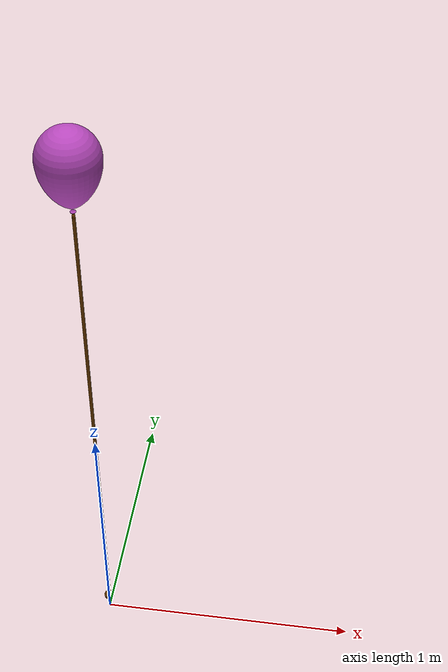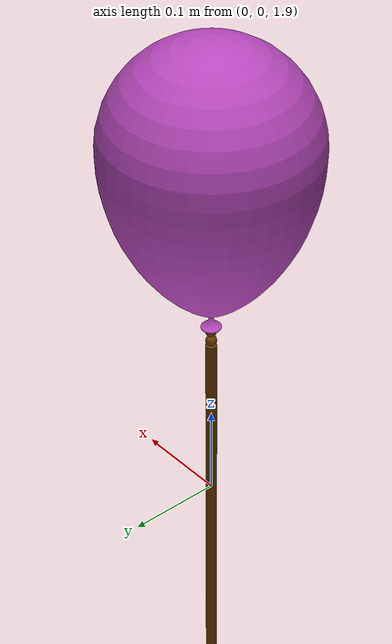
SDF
<?xml version='1.0'?>
<sdf version='1.6'>
  <model name='Balloon_15'>
    <link name='roof'>
      <kinematic>1</kinematic>
      <pose frame=''>0 0 0 0 -0 0</pose>
      <self_collide>0</self_collide>
      <inertial>
        <pose frame=''>0 0 0 0 -0 0</pose>
        <inertia>
          <ixx>1</ixx>
          <ixy>0</ixy>
          <ixz>0</ixz>
          <iyy>1</iyy>
          <iyz>0</iyz>
          <izz>1</izz>
        </inertia>
        <mass>1</mass>
      </inertial>
      <enable_wind>1</enable_wind>
      <gravity>1</gravity>
      <visual name='visual'>
        <transparency>1</transparency>
        <geometry>
          <box>
            <size>2 2 0.1</size>
          </box>
        </geometry>
        <material>
          <ambient>0.2 0.2 0.2 1</ambient>
          <diffuse>0.421 0.225 0 1</diffuse>
          <shader type='pixel'>
            <normal_map>__default__</normal_map>
          </shader>
          <script>
            <name>ModelPreview_1::roof::visual_MATERIAL_</name>
            <uri>__default__</uri>
          </script>
          <specular>0 0 0 1</specular>
          <emissive>0 0 0 1</emissive>
        </material>
        <pose frame=''>0 0 0 0 -0 0</pose>
        <cast_shadows>1</cast_shadows>
      </visual>
      <collision name='collision'>
        <laser_retro>0</laser_retro>
        <max_contacts>10</max_contacts>
        <pose frame=''>0 0 0 0 -0 0</pose>
        <geometry>
          <box>
            <size>1 1 0.1</size>
          </box>
        </geometry>
        <surface>
          <friction>
            <ode>
              <mu>0.1</mu>
              <mu2>0</mu2>
              <fdir1>0 0 0</fdir1>
              <slip1>0.01</slip1>
              <slip2>0.01</slip2>
            </ode>
            <torsional>
              <coefficient>1</coefficient>
              <patch_radius>0</patch_radius>
              <surface_radius>0</surface_radius>
              <use_patch_radius>0</use_patch_radius>
              <ode>
                <slip>0</slip>
              </ode>
            </torsional>
          </friction>
          <bounce>
            <restitution_coefficient>0.01</restitution_coefficient>
            <threshold>1e+06</threshold>
          </bounce>
          <contact>
            <collide_without_contact>0</collide_without_contact>
            <collide_without_contact_bitmask>1</collide_without_contact_bitmask>
            <collide_bitmask>1</collide_bitmask>
            <ode>
              <soft_cfm>0.01</soft_cfm>
              <soft_erp>0.2</soft_erp>
              <kp>1e+13</kp>
              <kd>1</kd>
              <max_vel>0.01</max_vel>
              <min_depth>0</min_depth>
            </ode>
            <bullet>
              <split_impulse>1</split_impulse>
              <split_impulse_penetration_threshold>-0.01</split_impulse_penetration_threshold>
              <soft_cfm>0.01</soft_cfm>
              <soft_erp>0.2</soft_erp>
              <kp>1e+13</kp>
              <kd>1</kd>
            </bullet>
          </contact>
        </surface>
      </collision>
    </link>
    <link name='balloon'>
      <pose frame=''>0 0 2.302 0 -0 0</pose>
      <self_collide>1</self_collide>
      <inertial>
        <pose frame=''>0 0 0 0 -0 0</pose>
        <inertia>
          <ixx>0.000156</ixx>
          <ixy>0</ixy>
          <ixz>0</ixz>
          <iyy>0.000156</iyy>
          <iyz>0</iyz>
          <izz>9.6e-05</izz>
        </inertia>
        <mass>0.01</mass>
      </inertial>
      <enable_wind>1</enable_wind>
      <kinematic>0</kinematic>
      <gravity>0</gravity>
      <visual name='visual'>
        <geometry>
          <mesh>
            <uri>/usr/share/gazebo-9/models/only_balloon.dae</uri>
            <scale>0.0006 0.0006 0.0006</scale>
          </mesh>
        </geometry>
        <material>
          <ambient>0.72 0.28 0.73 1</ambient>
          <diffuse>0.72 0.28 0.74 1</diffuse>
          <specular>1 1 1 1</specular>
          <shader type='pixel'>
            <normal_map>__default__</normal_map>
          </shader>
          <script>
            <name>ModelPreview_3::balloon::visual_MATERIAL_ModelPreview_1::balloon::visual_MATERIAL_</name>
            <uri>__default__</uri>
          </script>
          <specular>0 0 0 1</specular>
          <emissive>0 0 0 1</emissive>
        </material>
        <pose frame=''>0 0 -0.19 0 -0 0</pose>
        <transparency>0</transparency>
        <cast_shadows>1</cast_shadows>
      </visual>
      <collision name='collision'>
        <laser_retro>0</laser_retro>
        <max_contacts>10</max_contacts>
        <pose frame=''>0 0 0 0 -0 0</pose>
        <geometry>
          <box>
            <size>0.24 0.24 0.36</size>
          </box>
        </geometry>
        <surface>
          <friction>
            <ode>
              <mu>1</mu>
              <mu2>1</mu2>
              <fdir1>0 0 0</fdir1>
              <slip1>0</slip1>
              <slip2>0</slip2>
            </ode>
            <torsional>
              <coefficient>1</coefficient>
              <patch_radius>0</patch_radius>
              <surface_radius>0</surface_radius>
              <use_patch_radius>1</use_patch_radius>
              <ode>
                <slip>0</slip>
              </ode>
            </torsional>
          </friction>
          <bounce>
            <restitution_coefficient>0</restitution_coefficient>
            <threshold>1e+06</threshold>
          </bounce>
          <contact>
            <collide_without_contact>0</collide_without_contact>
            <collide_without_contact_bitmask>1</collide_without_contact_bitmask>
            <collide_bitmask>1</collide_bitmask>
            <ode>
              <soft_cfm>0</soft_cfm>
              <soft_erp>0.2</soft_erp>
              <kp>1e+13</kp>
              <kd>1</kd>
              <max_vel>0.01</max_vel>
              <min_depth>0</min_depth>
            </ode>
            <bullet>
              <split_impulse>1</split_impulse>
              <split_impulse_penetration_threshold>-0.01</split_impulse_penetration_threshold>
              <soft_cfm>0</soft_cfm>
              <soft_erp>0.2</soft_erp>
              <kp>1e+13</kp>
              <kd>1</kd>
            </bullet>
          </contact>
        </surface>
      </collision>
    </link>
    <link name='bar'>
      <pose frame=''>0 0 1.09 0 -0 0</pose>
      <self_collide>1</self_collide>
      <inertial>
        <pose frame=''>0 0 0 0 -0 0</pose>
        <inertia>
          <ixx>0.166671</ixx>
          <ixy>0</ixy>
          <ixz>0</ixz>
          <iyy>0.166671</iyy>
          <iyz>0</iyz>
          <izz>9e-06</izz>
        </inertia>
        <mass>0.5</mass>
      </inertial>
      <enable_wind>1</enable_wind>
      <kinematic>0</kinematic>
      <gravity>0</gravity>
      <visual name='visual'>
        <geometry>
          <cylinder>
            <radius>0.006</radius>
            <length>2</length>
          </cylinder>
        </geometry>
        <material>
          <ambient>0.729 0.552 0.384 1</ambient>
          <diffuse>0.421 0.225 0 1</diffuse>
          <shader type='pixel'>
            <normal_map>__default__</normal_map>
          </shader>
          <script>
            <name>ModelPreview_1::bar::visual_MATERIAL_</name>
            <uri>__default__</uri>
          </script>
          <specular>0 0 0 1</specular>
          <emissive>0 0 0 1</emissive>
        </material>
        <pose frame=''>0 0 0 0 -0 0</pose>
        <transparency>0</transparency>
        <cast_shadows>1</cast_shadows>
      </visual>
      <collision name='collision'>
        <laser_retro>0</laser_retro>
        <max_contacts>10</max_contacts>
        <pose frame=''>0 0 0 0 -0 0</pose>
        <geometry>
          <cylinder>
            <radius>0.006</radius>
            <length>2</length>
          </cylinder>
        </geometry>
        <surface>
          <friction>
            <ode>
              <mu>1</mu>
              <mu2>1</mu2>
              <fdir1>0 0 0</fdir1>
              <slip1>0</slip1>
              <slip2>0</slip2>
            </ode>
            <torsional>
              <coefficient>1</coefficient>
              <patch_radius>0</patch_radius>
              <surface_radius>0</surface_radius>
              <use_patch_radius>1</use_patch_radius>
              <ode>
                <slip>0</slip>
              </ode>
            </torsional>
          </friction>
          <bounce>
            <restitution_coefficient>0</restitution_coefficient>
            <threshold>1e+06</threshold>
          </bounce>
          <contact>
            <collide_without_contact>0</collide_without_contact>
            <collide_without_contact_bitmask>1</collide_without_contact_bitmask>
            <collide_bitmask>1</collide_bitmask>
            <ode>
              <soft_cfm>0</soft_cfm>
              <soft_erp>0.2</soft_erp>
              <kp>1e+13</kp>
              <kd>1</kd>
              <max_vel>0.01</max_vel>
              <min_depth>0</min_depth>
            </ode>
            <bullet>
              <split_impulse>1</split_impulse>
              <split_impulse_penetration_threshold>-0.01</split_impulse_penetration_threshold>
              <soft_cfm>0</soft_cfm>
              <soft_erp>0.2</soft_erp>
              <kp>1e+13</kp>
              <kd>1</kd>
            </bullet>
          </contact>
        </surface>
      </collision>
    </link>
    <link name='sphere_1'>
      <pose frame=''>0 0 0.07 0 -0 0</pose>
      <self_collide>0</self_collide>
      <inertial>
        <pose frame=''>0 0 0 0 -0 0</pose>
        <inertia>
          <ixx>1</ixx>
          <ixy>0</ixy>
          <ixz>0</ixz>
          <iyy>1</iyy>
          <iyz>0</iyz>
          <izz>1</izz>
        </inertia>
        <mass>1</mass>
      </inertial>
      <enable_wind>0</enable_wind>
      <kinematic>0</kinematic>
      <gravity>1</gravity>
      <visual name='visual'>
        <geometry>
          <sphere>
            <radius>0.02</radius>
          </sphere>
        </geometry>
        <material>
          <ambient>0.67 0.658 0.658 1</ambient>
          <diffuse>0.421 0.225 0 1</diffuse>
          <shader type='pixel'>
            <normal_map>__default__</normal_map>
          </shader>
          <script>
            <name>ModelPreview_1::sphere_1::visual_MATERIAL_</name>
            <uri>__default__</uri>
          </script>
          <specular>0 0 0 1</specular>
          <emissive>0 0 0 1</emissive>
        </material>
        <pose frame=''>0 0 0 0 -0 0</pose>
        <transparency>0</transparency>
        <cast_shadows>1</cast_shadows>
      </visual>
      <collision name='collision'>
        <laser_retro>0</laser_retro>
        <max_contacts>10</max_contacts>
        <pose frame=''>0 0 0 0 -0 0</pose>
        <geometry>
          <sphere>
            <radius>0.01</radius>
          </sphere>
        </geometry>
        <surface>
          <friction>
            <ode>
              <mu>1</mu>
              <mu2>1</mu2>
              <fdir1>0.001 0 0</fdir1>
              <slip1>0.001</slip1>
              <slip2>0</slip2>
            </ode>
            <torsional>
              <coefficient>1</coefficient>
              <patch_radius>0</patch_radius>
              <surface_radius>0</surface_radius>
              <use_patch_radius>1</use_patch_radius>
              <ode>
                <slip>0</slip>
              </ode>
            </torsional>
          </friction>
          <bounce>
            <restitution_coefficient>0</restitution_coefficient>
            <threshold>1e+06</threshold>
          </bounce>
          <contact>
            <collide_without_contact>0</collide_without_contact>
            <collide_without_contact_bitmask>1</collide_without_contact_bitmask>
            <collide_bitmask>1</collide_bitmask>
            <ode>
              <soft_cfm>0</soft_cfm>
              <soft_erp>0.2</soft_erp>
              <kp>1e+13</kp>
              <kd>1</kd>
              <max_vel>0</max_vel>
              <min_depth>0</min_depth>
            </ode>
            <bullet>
              <split_impulse>1</split_impulse>
              <split_impulse_penetration_threshold>-0.01</split_impulse_penetration_threshold>
              <soft_cfm>0</soft_cfm>
              <soft_erp>0.2</soft_erp>
              <kp>1e+13</kp>
              <kd>1</kd>
            </bullet>
          </contact>
        </surface>
      </collision>
    </link>
    <link name='sphere_2'>
      <pose frame=''>0 0 2.096 0 -0 0</pose>
      <self_collide>0</self_collide>
      <inertial>
        <pose frame=''>0 0 0 0 -0 0</pose>
        <inertia>
          <ixx>1.4e-07</ixx>
          <ixy>0</ixy>
          <ixz>0</ixz>
          <iyy>1.4e-07</iyy>
          <iyz>0</iyz>
          <izz>1.4e-07</izz>
        </inertia>
        <mass>0.01</mass>
      </inertial>
      <enable_wind>1</enable_wind>
      <kinematic>0</kinematic>
      <gravity>0</gravity>
      <visual name='visual'>
        <geometry>
          <sphere>
            <radius>0.006</radius>
          </sphere>
        </geometry>
        <material>
          <ambient>0.67 0.658 0.658 1</ambient>
          <diffuse>0.421 0.225 0 1</diffuse>
          <shader type='pixel'>
            <normal_map>__default__</normal_map>
          </shader>
          <script>
            <name>ModelPreview_1::sphere_2::visual_MATERIAL_</name>
            <uri>__default__</uri>
          </script>
          <specular>0 0 0 1</specular>
          <emissive>0 0 0 1</emissive>
        </material>
        <pose frame=''>0 0 0 0 -0 0</pose>
        <transparency>0</transparency>
        <cast_shadows>1</cast_shadows>
      </visual>
      <collision name='collision'>
        <laser_retro>0</laser_retro>
        <max_contacts>10</max_contacts>
        <pose frame=''>0 0 0 0 -0 0</pose>
        <geometry>
          <sphere>
            <radius>0.006</radius>
          </sphere>
        </geometry>
        <surface>
          <friction>
            <ode>
              <mu>1</mu>
              <mu2>1</mu2>
              <fdir1>0 0 0</fdir1>
              <slip1>0</slip1>
              <slip2>0</slip2>
            </ode>
            <torsional>
              <coefficient>1</coefficient>
              <patch_radius>0</patch_radius>
              <surface_radius>0</surface_radius>
              <use_patch_radius>1</use_patch_radius>
              <ode>
                <slip>0</slip>
              </ode>
            </torsional>
          </friction>
          <bounce>
            <restitution_coefficient>0</restitution_coefficient>
            <threshold>1e+06</threshold>
          </bounce>
          <contact>
            <collide_without_contact>0</collide_without_contact>
            <collide_without_contact_bitmask>1</collide_without_contact_bitmask>
            <collide_bitmask>1</collide_bitmask>
            <ode>
              <soft_cfm>0</soft_cfm>
              <soft_erp>0.2</soft_erp>
              <kp>1e+13</kp>
              <kd>1</kd>
              <max_vel>0.01</max_vel>
              <min_depth>0</min_depth>
            </ode>
            <bullet>
              <split_impulse>1</split_impulse>
              <split_impulse_penetration_threshold>-0.01</split_impulse_penetration_threshold>
              <soft_cfm>0</soft_cfm>
              <soft_erp>0.2</soft_erp>
              <kp>1e+13</kp>
              <kd>1</kd>
            </bullet>
          </contact>
        </surface>
      </collision>
    </link>
    <link name='sphere_3'>
      <pose frame=''>0 0 2.108 0 -0 0</pose>
      <self_collide>0</self_collide>
      <inertial>
        <pose frame=''>0 0 0 0 -0 0</pose>
        <inertia>
          <ixx>1.4e-07</ixx>
          <ixy>0</ixy>
          <ixz>0</ixz>
          <iyy>1.4e-07</iyy>
          <iyz>0</iyz>
          <izz>1.4e-07</izz>
        </inertia>
        <mass>0.01</mass>
      </inertial>
      <enable_wind>1</enable_wind>
      <kinematic>0</kinematic>
      <gravity>0</gravity>
      <visual name='visual'>
        <geometry>
          <sphere>
            <radius>0.006</radius>
          </sphere>
        </geometry>
        <material>
          <ambient>0.67 0.658 0.658 1</ambient>
          <diffuse>0.421 0.225 0 1</diffuse>
          <shader type='pixel'>
            <normal_map>__default__</normal_map>
          </shader>
          <script>
            <name>ModelPreview_1::sphere_3::visual_MATERIAL_</name>
            <uri>__default__</uri>
          </script>
          <specular>0 0 0 1</specular>
          <emissive>0 0 0 1</emissive>
        </material>
        <pose frame=''>0 0 0 0 -0 0</pose>
        <transparency>0</transparency>
        <cast_shadows>1</cast_shadows>
      </visual>
      <collision name='collision'>
        <laser_retro>0</laser_retro>
        <max_contacts>10</max_contacts>
        <pose frame=''>0 0 0 0 -0 0</pose>
        <geometry>
          <sphere>
            <radius>0.006</radius>
          </sphere>
        </geometry>
        <surface>
          <friction>
            <ode>
              <mu>1</mu>
              <mu2>1</mu2>
              <fdir1>0 0 0</fdir1>
              <slip1>0</slip1>
              <slip2>0</slip2>
            </ode>
            <torsional>
              <coefficient>1</coefficient>
              <patch_radius>0</patch_radius>
              <surface_radius>0</surface_radius>
              <use_patch_radius>1</use_patch_radius>
              <ode>
                <slip>0</slip>
              </ode>
            </torsional>
          </friction>
          <bounce>
            <restitution_coefficient>0</restitution_coefficient>
            <threshold>1e+06</threshold>
          </bounce>
          <contact>
            <collide_without_contact>0</collide_without_contact>
            <collide_without_contact_bitmask>1</collide_without_contact_bitmask>
            <collide_bitmask>1</collide_bitmask>
            <ode>
              <soft_cfm>0</soft_cfm>
              <soft_erp>0.2</soft_erp>
              <kp>1e+13</kp>
              <kd>1</kd>
              <max_vel>0.01</max_vel>
              <min_depth>0</min_depth>
            </ode>
            <bullet>
              <split_impulse>1</split_impulse>
              <split_impulse_penetration_threshold>-0.01</split_impulse_penetration_threshold>
              <soft_cfm>0</soft_cfm>
              <soft_erp>0.2</soft_erp>
              <kp>1e+13</kp>
              <kd>1</kd>
            </bullet>
          </contact>
        </surface>
      </collision>
    </link>
    <joint name='balloon_joint' type='fixed'>
      <parent>sphere_3</parent>
      <child>balloon</child>
      <pose frame=''>0 0 0 0 -0 0</pose>
      <physics>
        <ode>
          <limit>
            <cfm>0</cfm>
            <erp>0.2</erp>
          </limit>
          <suspension>
            <cfm>0</cfm>
            <erp>0.2</erp>
          </suspension>
        </ode>
      </physics>
    </joint>
    <joint name='bar_joint' type='fixed'>
      <parent>sphere_1</parent>
      <child>bar</child>
      <pose frame=''>0 0 0 0 -0 0</pose>
      <physics>
        <ode>
          <limit>
            <cfm>0</cfm>
            <erp>0.2</erp>
          </limit>
          <suspension>
            <cfm>0</cfm>
            <erp>0.2</erp>
          </suspension>
        </ode>
      </physics>
    </joint>
    <joint name='sphere_1_joint' type='fixed'>
      <parent>roof</parent>
      <child>sphere_1</child>
      <pose frame=''>0 0 0 0 -0 0</pose>
      <physics>
        <ode>
          <limit>
            <cfm>0</cfm>
            <erp>0.2</erp>
          </limit>
          <suspension>
            <cfm>0</cfm>
            <erp>0.2</erp>
          </suspension>
        </ode>
      </physics>
    </joint>
    <joint name='sphere_2_joint' type='fixed'>
      <parent>sphere_2</parent>
      <child>bar</child>
      <pose frame=''>0 0 0 0 -0 0</pose>
      <physics>
        <ode>
          <limit>
            <cfm>0</cfm>
            <erp>0.2</erp>
          </limit>
          <suspension>
            <cfm>0</cfm>
            <erp>0.2</erp>
          </suspension>
        </ode>
      </physics>
    </joint>
    <joint name='sphere_3_joint' type='ball'>
      <parent>sphere_2</parent>
      <child>sphere_3</child>
      <pose frame=''>0 0 0 0 -0 0</pose>
      <physics>
        <ode>
          <limit>
            <cfm>0</cfm>
            <erp>0.2</erp>
          </limit>
          <suspension>
            <cfm>0</cfm>
            <erp>0.2</erp>
          </suspension>
        </ode>
      </physics>
    </joint>
    <static>0</static>
    <allow_auto_disable>1</allow_auto_disable>
  </model>
</sdf>
